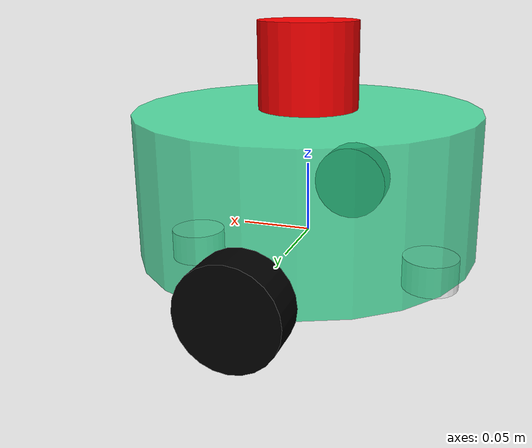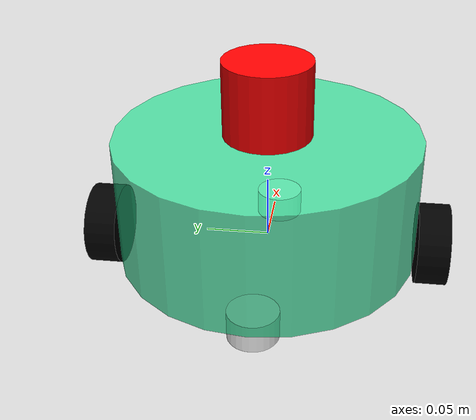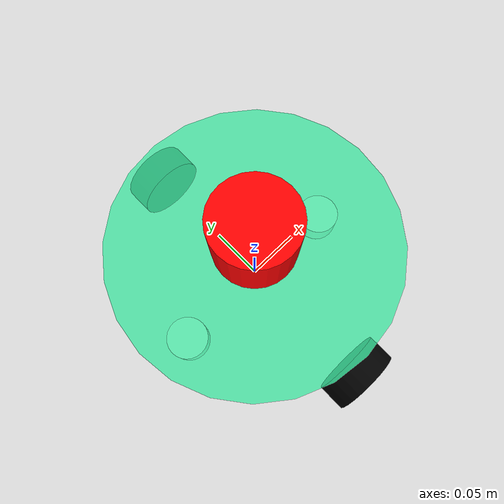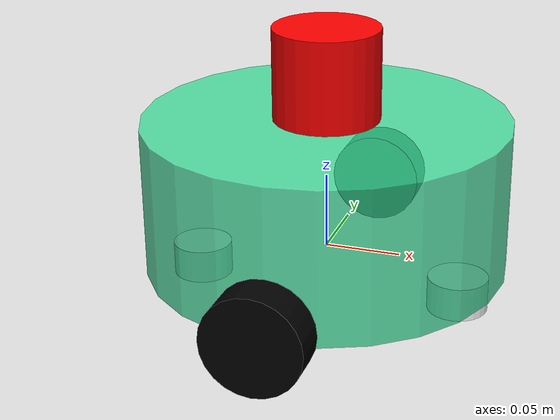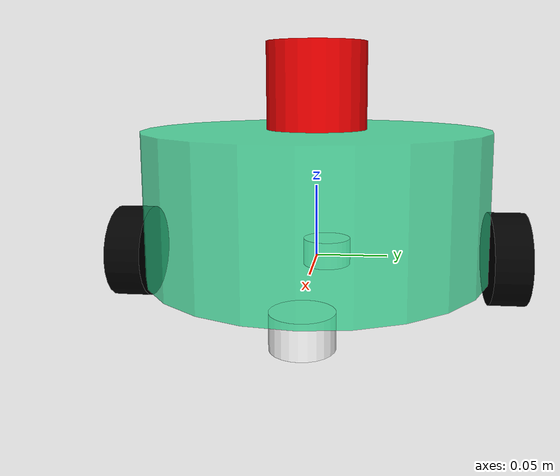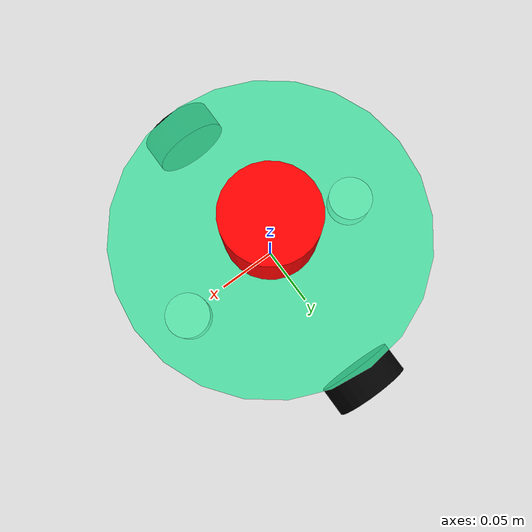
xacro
<?xml version="1.0"?>
<robot xmlns:xacro="http://www.ros.org/wiki/xacro" name="robot">

    <!-- Add namespace parameter -->
    <xacro:arg name="namespace" default=""/>

    <xacro:include filename="robot_core.xacro"/>
    <xacro:include filename="gazebo_control.xacro"/>
    <xacro:include filename="lidar.xacro"/>

</robot>

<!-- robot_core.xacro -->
<robot xmlns:xacro="http://www.ros.org/wiki/xacro">

    <xacro:include filename= "inertial_macros.xacro"/>

    <material name="white">
        <color rgba="1 1 1 1"/>
    </material>

    <material name="green">
        <color rgba="0.231 0.906 0.624 0.8"/>
    </material>

    <material name="orange">
        <color rgba="0.898 0.294 0.071 0.8"/>
    </material>

    <material name="black">
        <color rgba="0 0 0 1"/>
    </material>

    <material name="red">
        <color rgba="1 0 0 1"/>
    </material>

    <link name="$(arg namespace)/base_link">
    </link>

    <joint name = "$(arg namespace)/chassis_joint" type = "fixed">
        <parent link = "$(arg namespace)/base_link"/>
        <child link = "$(arg namespace)/chassis_link"/>
        <origin xyz = "0 0 0.04"/>
    </joint>

    <link name = "$(arg namespace)/base_footprint">
    </link>

    <joint name = "$(arg namespace)/base_footprint_joint" type = "fixed">
        <parent link = "$(arg namespace)/base_link"/>
        <child link = "$(arg namespace)/base_footprint"/>
        <origin xyz = "0 0 0" rpy="0 0 0"/>
    </joint>

    <link name="$(arg namespace)/chassis_link">
        <visual>
            <origin xyz="0 0 0"/>
            <geometry>
                <cylinder radius = "0.120" length = "0.100"/>
            </geometry>
            <material name = "green"/>
        </visual>
        <collision>
            <origin xyz="0 0 0"/>
            <geometry>
                <cylinder radius = "0.120" length = "0.100"/>
            </geometry>
        </collision>
        <xacro:inertial_cylinder mass = "2" length= "0.100" radius = "0.120">
            <origin xyz = "0 0 0 " rpy = "0 0 0"/>
        </xacro:inertial_cylinder>

    </link>

    <gazebo reference = "$(arg namespace)/chassis_link">
        <material>Gazebo/Red</material>
    </gazebo>

    <joint name= "$(arg namespace)/left_wheel_joint" type = "continuous">
        <parent link = "$(arg namespace)/base_link"/>
        <child link = "$(arg namespace)/left_wheel_link"/>
        <origin xyz = "0 0.1325 0" rpy = "-${pi/2} 0 0"/>
        <axis xyz = "0 0 1"/>
    </joint>

    <link name = "$(arg namespace)/left_wheel_link">

        <visual>
            <geometry>
                <cylinder radius = "0.0325" length = "0.025"/>
            </geometry>
            <material name = "black"/>
        </visual>

        <collision>
            <geometry>
                <cylinder radius = "0.0325" length = "0.025"/>
            </geometry>
        </collision>

        <xacro:inertial_cylinder mass = "0.029" length= "0.025" radius = "0.0325">
            <origin xyz = "0 0 0 " rpy = "0 0 0"/>
        </xacro:inertial_cylinder>
    </link>

    <gazebo reference = "$(arg namespace)/left_wheel_link">
        <material>Gazebo/Black</material>
    </gazebo>

    <joint name= "$(arg namespace)/right_wheel_joint" type = "continuous">
        <parent link = "$(arg namespace)/base_link"/>
        <child link = "$(arg namespace)/right_wheel_link"/>
        <origin xyz = "0 -0.1325 0" rpy = "${pi/2} 0 0"/>
        <axis xyz = "0 0 -1"/>
    </joint>

    <link name = "$(arg namespace)/right_wheel_link">
        <visual>
            <geometry>
                <cylinder radius = "0.0325" length = "0.025"/>
            </geometry>
            <material name = "black"/>
        </visual>

        <collision>
            <geometry>
                <cylinder radius = "0.0325" length = "0.025"/>
            </geometry>
        </collision>

        <xacro:inertial_cylinder mass = "0.029" length= "0.025" radius = "0.0325">
            <origin xyz = "0 0 0 " rpy = "0 0 0"/>
        </xacro:inertial_cylinder>

    </link>

    <gazebo reference = "$(arg namespace)/right_wheel_link">
        <material>Gazebo/Black</material>
    </gazebo>

    <joint name = "$(arg namespace)/front_caster_wheel_joint" type = "fixed">
        <parent link = "$(arg namespace)/base_link"/>
        <child link = "$(arg namespace)/front_caster_wheel_link"/>
        <origin xyz = "0.09 0 -0.02125"/>
    </joint>

    <link name = "$(arg namespace)/front_caster_wheel_link">
        <visual>
            <geometry>
                <cylinder radius = "0.02" length = "0.0225"/>
            </geometry>
            <material name = "white"/>
        </visual>
        <collision>
            <geometry>
                <cylinder radius = "0.02" length = "0.0225"/>
            </geometry>
        </collision>

        <xacro:inertial_cylinder mass = "0.025" length= "0.0225" radius = "0.02">
            <origin xyz = "0 0 0 " rpy = "0 0 0"/>
        </xacro:inertial_cylinder>
    </link>

    <gazebo reference = "$(arg namespace)/front_caster_wheel_link">
        <material>Gazebo/Grey</material>
        <mu1 value="0.001"/>
        <mu2 value="0.001"/>
    </gazebo>

    <joint name = "$(arg namespace)/back_caster_wheel_joint" type = "fixed">
        <parent link = "$(arg namespace)/base_link"/>
        <child link = "$(arg namespace)/back_caster_wheel_link"/>
        <origin xyz = "-0.09 0 -0.02125"/>
    </joint>

    <link name = "$(arg namespace)/back_caster_wheel_link">
        <visual>
            <geometry>
                <cylinder radius = "0.02" length = "0.0225"/>
            </geometry>
            <material name = "white"/>
        </visual>

        <collision>
            <geometry>
                <cylinder radius = "0.02" length = "0.0225"/>
            </geometry>
        </collision>

        <xacro:inertial_cylinder mass = "0.025" length= "0.0225" radius = "0.02">
            <origin xyz = "0 0 0 " rpy = "0 0 0"/>
        </xacro:inertial_cylinder>
    </link>

    <gazebo reference = "$(arg namespace)/back_caster_wheel_link">
        <material>Gazebo/Grey</material>
        <mu1 value="0.001"/>
        <mu2 value="0.001"/>
    </gazebo>

</robot>

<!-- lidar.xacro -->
<robot xmlns:xacro="http://www.ros.org/wiki/xacro">

    <joint name="$(arg namespace)/laser_joint" type = "fixed">
        <parent link = "$(arg namespace)/chassis_link"/>
        <child link = "$(arg namespace)/laser_frame"/>
        <origin xyz="0 0 0.08" rpy = "0 0 0"/>

    </joint>

    <link name = "$(arg namespace)/laser_frame">

        <visual>
            <geometry>
                <cylinder radius = "0.035" length = "0.06"/>
            </geometry>
            <material name = "red"/>
        </visual>

        <collision>
            <geometry>
                <cylinder radius = "0.035" length = "0.06"/>
            </geometry>
        </collision>

        <xacro:inertial_cylinder mass = "0.018" length= "0.06" radius = "0.035">
            <origin xyz = "0 0 0 " rpy = "0 0 0"/>
        </xacro:inertial_cylinder>
    </link>

    <gazebo reference="$(arg namespace)/laser_frame">
        <material>Gazebo/Red</material>

        <sensor name="laser" type="ray">
            <pose> 0 0 0 0 0 0 </pose>
            <visualize>true</visualize>
            <update_rate>10</update_rate>
            <ray>
                <scan>
                    <horizontal>
                        <samples>360</samples>
                        <resolution>1</resolution>
                        <min_angle>-3.14</min_angle>
                        <max_angle>3.14</max_angle>
                    </horizontal>
                </scan>
                <range>
                    <min>0.3</min>
                    <max>12</max>
                </range>
            </ray>
            <plugin name="$(arg namespace)_laser_controller" filename="libgazebo_ros_ray_sensor.so">
                <ros>
                    <namespace>$(arg namespace)</namespace>
                    <argument>~/out:=scan</argument>
                </ros>
                <output_type>sensor_msgs/LaserScan</output_type>
                <frame_name>$(arg namespace)/laser_frame</frame_name>
            </plugin>
        </sensor>
    </gazebo>
</robot>
